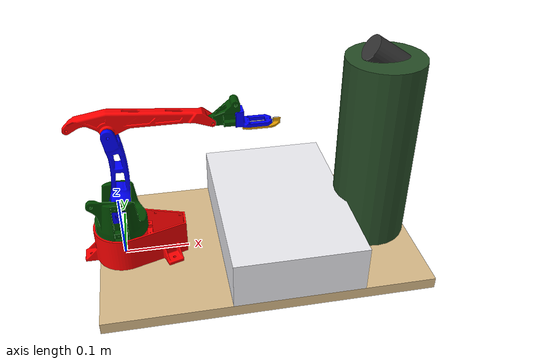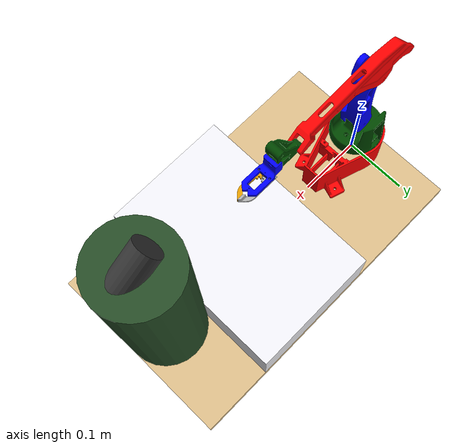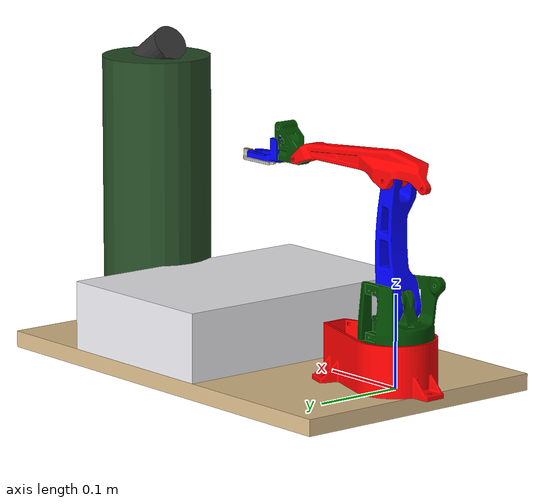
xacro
<?xml version="1.0"?>
<robot xmlns:xacro="http://www.ros.org/wiki/xacro" name="eezybotarm">
    <xacro:arg name="initial_positions_file" default="initial_positions.yaml" />
    <xacro:arg name="use_mock_hardware" default="true" />
    <xacro:arg name="i2c_bus" default="/dev/i2c-7" />
    <xacro:arg name="i2c_address" default="0x60" />
    <xacro:arg name="pwm_frequency" default="50" />
    <xacro:arg name="include_environment" default="true" />

    <!-- Import eezybotarm urdf file -->
    <xacro:include filename="$(find eezybotarm_description)/urdf/robot.urdf" />

    <!-- Import workspace environment xacro -->
    <xacro:include filename="$(find eezybotarm_description)/urdf/environment.xacro" />
    <xacro:if value="$(arg include_environment)">
        <xacro:environment parent="base_link" />
    </xacro:if>

    <!-- Import control_xacro -->
    <xacro:include filename="eezybotarm.ros2_control.xacro" />

    <xacro:eezybotarm_ros2_control
        name="EezyBotArmSystem"
        initial_positions_file="$(arg initial_positions_file)"
        use_mock_hardware="$(arg use_mock_hardware)"
        i2c_bus="$(arg i2c_bus)"
        i2c_address="$(arg i2c_address)"
        pwm_frequency="$(arg pwm_frequency)" />

</robot>

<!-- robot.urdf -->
<robot name="eezybotarm">

<material name="red">
    <color rgba="1.0 0.0 0.0 1.0"/>
  </material>
  <material name="dark_green">
    <color rgba="0.0 0.275 0.0 1.0"/>
  </material>
  <material name="blue">
    <color rgba="0.0 0.0 1.0 1.0"/>
  </material>

<!-- BASE LINK -->
  <link
    name="base_link">
    <visual>
      <origin xyz="0 0 0" rpy="0 0 3.14159265"/>
      <geometry>
        <mesh filename="package://eezybotarm_description/meshes/012_base.stl" />
      </geometry>
      <material name="red"/>
    </visual>
    <collision>
      <origin xyz="0 0 0" rpy="0 0 3.14159265"/>
      <geometry>
        <mesh filename="package://eezybotarm_description/meshes/012_base.stl" />
      </geometry>
    </collision>
  </link>

<!-- HIP -->
  <joint name="waist_joint" type="revolute">
    <origin xyz="0 0 0.05" rpy="0 0 0" />
    <parent link="base_link" />
    <child link="turret_link" />
    <axis xyz="0 0 1" />
    <limit effort="0" velocity="0"
      lower="-0.7854" upper="0.7854"/>
  </joint>

<!--HIP-->
  <link
    name="turret_link">
    <visual>
      <origin xyz="0 0 0" rpy="0 0 -1.570796325" />
      <geometry>
        <mesh filename="package://eezybotarm_description/meshes/001_base.stl" />
      </geometry>
      <material name="dark_green"/>
    </visual>
    <collision>
      <origin xyz="0 0 0" rpy="0 0 -1.570796325" />
      <geometry>
        <mesh filename="package://eezybotarm_description/meshes/001_base.stl" />
      </geometry>
    </collision>
  </link>

<!-- SHOULDER -->
  <joint name="shoulder_joint" type="revolute">
    <origin xyz="0 -0.005 0.037" rpy="0 0 0" />
    <parent link="turret_link" />
    <child link="shoulder_link" />
    <axis xyz="0 1 0" />
    <limit effort="0" velocity="0"
      lower="-0.45" upper="0.80"/>
  </joint>

<!-- SHOULDER -->
  <link name="shoulder_link">
    <visual>
      <origin xyz="0 0 0" rpy="0 0 3.14159" />
      <geometry>
        <mesh filename="package://eezybotarm_description/meshes/002_mainarm.stl" />
      </geometry>
      <material name="blue"/>
    </visual>
    <collision>
      <origin xyz="0 0 0" rpy="0 0 3.14159" />
      <geometry>
        <mesh filename="package://eezybotarm_description/meshes/002_mainarm.stl" />
      </geometry>
    </collision>
  </link>

  <!-- VIRTUAL MIMIC JOINT 2-->
  <joint name="shoulder_mimic_joint" type="revolute">
    <origin xyz="0 -0.0011 0.135" rpy="0 0 0" />
    <parent link="shoulder_link"/>
    <child link="virtual_parallelogram_link"/>
    <axis xyz="0 1 0"/>
    <limit effort="30" velocity="1.0" lower="-3.14159" upper="3.14159" />
    <mimic joint="shoulder_joint" multiplier="-1" offset="0" />
  </joint>

  <link name="virtual_parallelogram_link" />

<!-- ELBOW -->
  <joint name="elbow_joint" type="revolute">
    <origin xyz="0 0.013 0" rpy="0 0 0" />
    <parent link="virtual_parallelogram_link" />
    <child link="forearm_link" />
    <axis xyz="0 1 0" />
    <limit effort="0" velocity="0" lower="-0.2" upper="0.85"/>
  </joint>

<!-- ELBOW -->
  <link name="forearm_link">
    <visual>
      <geometry>
        <mesh filename="package://eezybotarm_description/meshes/006_horarm.stl" />
      </geometry>
      <material name="red"/>
    </visual>
    <collision>
      <geometry>
        <mesh filename="package://eezybotarm_description/meshes/006_horarm.stl" />
      </geometry>
    </collision>
  </link>

  <!-- CLAW SUPPORT -->
  <joint name="wrist_joint" type="revolute">
    <origin xyz="0.1468 -0.005 0" rpy="0 0 0" />
    <parent link="forearm_link" />
    <child link="wrist_link" />
    <axis xyz="0 1 0" />
    <limit effort="0" velocity="0" lower="-3.14159" upper="3.14159"/>
    <mimic joint="elbow_joint" multiplier="-1" offset="0" />
  </joint>

  <!-- LAW SUPPORT -->
  <link name="wrist_link">
    <visual>
      <origin xyz="0.0393 0.0075 -0.0065" rpy="0 0 1.570796325" />
      <geometry>
        <mesh filename="package://eezybotarm_description/meshes/009_trialinkfront.stl" />
      </geometry>
      <material name="dark_green"/>
    </visual>
    <collision>
      <origin xyz="0.0393 0.0075 -0.0065" rpy="0 0 1.570796325" />
      <geometry>
        <mesh filename="package://eezybotarm_description/meshes/009_trialinkfront.stl" />
      </geometry>
    </collision>
  </link>

  <!-- CLAW BASE -->
  <joint name="claw_base_joint" type="fixed">
    <origin xyz="0.045 -0.0015 -0.009" rpy="-0 0 0" />
    <parent link="wrist_link" />
    <child link="claw_base" />
  </joint>

  <!-- CLAW BASE -->
  <link name="claw_base">
    <visual>
      <geometry>
        <mesh filename="package://eezybotarm_description/meshes/014_clawbase.stl" />
      </geometry>
      <material name="blue" />
    </visual>
    <collision>
      <geometry>
        <mesh filename="package://eezybotarm_description/meshes/014_clawbase.stl" />
      </geometry>
    </collision>
  </link>

  <!-- FINGERS -->
  <joint name="finger_left_joint" type="revolute">
    <origin xyz="0.0085 0.009 -0.004" rpy="0 0 0" />
    <parent link="claw_base"/>
    <child link="claw_l"/>
    <axis xyz="0 0 1" />
    <limit effort="0" lower="0" upper="0.65" velocity="1.0" />
  </joint>

  <joint name="finger_right_joint" type="revolute">
    <origin xyz="0.0085 -0.009 -0.004" rpy="0 0 0" />
    <parent link="claw_base"/>
    <child link="claw_r"/>
    <axis xyz="0 0 -1" />
    <limit effort="0" lower="0" upper="0.65" velocity="1.0" />
    <mimic joint="finger_left_joint" multiplier="1.0" offset="0" />
  </joint>

  <link name="claw_l">
    <visual>
      <origin xyz="0 0 0" rpy="-1.570796325 0 0" />
      <geometry>
        <mesh filename="package://eezybotarm_description/meshes/017_clawfingersx.stl" />
      </geometry>
    </visual>
    <collision>
      <origin xyz="0 0 0" rpy="-1.570796325 0 0" />
      <geometry>
        <mesh filename="package://eezybotarm_description/meshes/017_clawfingersx.stl" />
      </geometry>
    </collision>
  </link>

  <link name="claw_r">
    <visual>
      <origin xyz="0 0 0.0033" rpy="1.570796325 0 0" />
      <geometry>
        <mesh filename="package://eezybotarm_description/meshes/015_clawfingerdx.stl" />
      </geometry>
    </visual>
    <collision>
      <origin xyz="0 0 0.0033" rpy="1.570796325 0 0" />
      <geometry>
        <mesh filename="package://eezybotarm_description/meshes/015_clawfingerdx.stl" />
      </geometry>
    </collision>
  </link>

  <!-- End-Effector frame for MoveIt -->
  <joint name="ee_joint" type="fixed">
    <origin xyz="0.06 0 0" rpy="0 0 0" />
    <parent link="claw_base" />
    <child link="ee_link" />
  </joint>

  <link name="ee_link"/>

</robot>

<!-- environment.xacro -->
<robot xmlns:xacro="http://www.ros.org/wiki/xacro">
  <xacro:macro name="environment" params="parent:=base_link">
    <!-- Base Mounting Board (500 x 300 x 18 mm) -->
    <!-- Base link is 40mm from the rear edge along +X. Center is at X = -0.040 + 0.250 = +0.210 m -->
    <link name="base_board">
      <visual>
        <origin xyz="0 0 0" rpy="0 0 0"/>
        <geometry>
          <box size="0.500 0.300 0.018"/>
        </geometry>
        <material name="wood_pine">
          <color rgba="0.86 0.74 0.54 1.0"/>
        </material>
      </visual>
      <collision>
        <origin xyz="0 0 0" rpy="0 0 0"/>
        <geometry>
          <box size="0.500 0.300 0.018"/>
        </geometry>
      </collision>
    </link>

    <joint name="${parent}_to_base_board" type="fixed">
      <parent link="${parent}"/>
      <child link="base_board"/>
      <origin xyz="0.210 0.0 -0.009" rpy="0 0 0"/>
    </joint>

    <!-- Elevated Sorting Work Table (200 x 300 x 75 mm) -->
    <!-- Front edge of board is at X = +0.460 m. Table is 110mm from front edge, depth is 200mm. -->
    <!-- Table spans X in [+0.150, +0.350], center is at X = +0.250 m, Z top at +0.075 m (center at Z = 0.0375 m) -->
    <link name="work_table">
      <visual>
        <origin xyz="0 0 0" rpy="0 0 0"/>
        <geometry>
          <box size="0.200 0.300 0.075"/>
        </geometry>
        <material name="table_surface">
          <color rgba="0.94 0.94 0.96 1.0"/>
        </material>
      </visual>
      <collision>
        <origin xyz="0 0 0" rpy="0 0 0"/>
        <geometry>
          <box size="0.200 0.300 0.075"/>
        </geometry>
      </collision>
    </link>

    <joint name="${parent}_to_work_table" type="fixed">
      <parent link="${parent}"/>
      <child link="work_table"/>
      <origin xyz="0.250 0.0 0.0375" rpy="0 0 0"/>
    </joint>

    <!-- Camera Stand (height 300 mm, base width ~120 mm) -->
    <!-- Located at X = +0.400 m, Y = 0.0, Z center at +0.150 m -->
    <link name="camera_stand">
      <visual>
        <origin xyz="0 0 0" rpy="0 0 0"/>
        <geometry>
          <cylinder radius="0.060" length="0.300"/>
        </geometry>
        <material name="stand_green">
          <color rgba="0.15 0.30 0.15 1.0"/>
        </material>
      </visual>
      <collision>
        <origin xyz="0 0 0" rpy="0 0 0"/>
        <geometry>
          <cylinder radius="0.060" length="0.300"/>
        </geometry>
      </collision>
    </link>

    <joint name="${parent}_to_camera_stand" type="fixed">
      <parent link="${parent}"/>
      <child link="camera_stand"/>
      <origin xyz="0.400 0.0 0.150" rpy="0 0 0"/>
    </joint>

    <!-- Camera Body Link mounted on top of the stand (Z = +0.150 relative to stand center, i.e., Z = +0.300 m) -->
    <!-- Oriented towards -X (yaw = pi), pitched down ~56 degrees (0.9828 rad) towards the center of work table -->
    <link name="camera_link">
      <visual>
        <origin xyz="0 0 0" rpy="0 0 0"/>
        <geometry>
          <cylinder radius="0.020" length="0.060"/>
        </geometry>
        <material name="camera_body">
          <color rgba="0.2 0.2 0.2 1.0"/>
        </material>
      </visual>
      <collision>
        <origin xyz="0 0 0" rpy="0 0 0"/>
        <geometry>
          <cylinder radius="0.025" length="0.070"/>
        </geometry>
      </collision>
    </link>

    <joint name="camera_stand_to_camera_link" type="fixed">
      <parent link="camera_stand"/>
      <child link="camera_link"/>
      <origin xyz="0.0 0.0 0.150" rpy="0.0 0.9828 3.14159"/>
    </joint>

    <!-- Camera Optical Frame (ROS Standard: Z forward, X right, Y down) -->
    <link name="camera_optical_frame"/>

    <joint name="camera_link_to_optical" type="fixed">
      <parent link="camera_link"/>
      <child link="camera_optical_frame"/>
      <origin xyz="0 0 0" rpy="-1.5707963 0 -1.5707963"/>
    </joint>
  </xacro:macro>
</robot>
